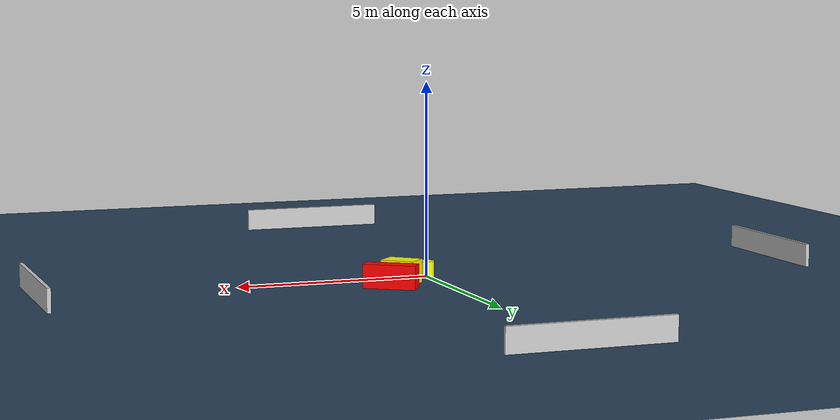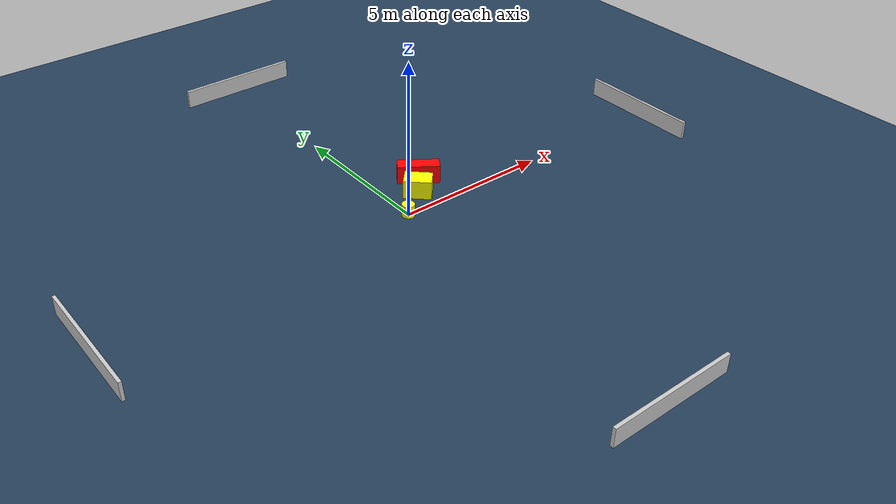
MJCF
<?xml version="1.0" ?>
<mujoco model="generated_environment">
  <option timestep="0.01" integrator="RK4" cone="elliptic"/>
  <default>
    <geom density="1"/>
  </default>
  <asset>
    <texture builtin="gradient" height="3072" name="skybox" rgb1="0.3 0.5 0.7" rgb2="0 0 0" type="skybox" width="512"/>
    <texture builtin="checker" height="300" name="groundplane" rgb1="0.2 0.3 0.4" rgb2="0.1 0.2 0.3" type="2d" width="300"/>
    <material name="groundplane" reflectance="0.2" texrepeat="5 5" texture="groundplane"/>
  </asset>
  <worldbody>
    <light dir="0 0 -1" directional="true" pos="0 0 1.5"/>
    <geom condim="3" friction="0.5 0.005 0.001" material="groundplane" name="floor" pos="0 0 0" size="0 0 0.05" type="plane"/>
    <body name="walls">
      <geom name="wall_1" condim="4" pos="-10.0 0.0 0.3" rgba="0.800000011920929 0.800000011920929 0.800000011920929 1.0" size="0.05 2.0 0.3" type="box"/>
      <geom name="wall_2" condim="4" pos="10.0 0.0 0.3" rgba="0.800000011920929 0.800000011920929 0.800000011920929 1.0" size="0.05 2.0 0.3" type="box"/>
      <geom name="wall_3" condim="4" pos="0.0 -10.0 0.3" rgba="0.800000011920929 0.800000011920929 0.800000011920929 1.0" size="2.0 0.05 0.3" type="box"/>
      <geom name="wall_4" condim="4" pos="0.0 10.0 0.3" rgba="0.800000011920929 0.800000011920929 0.800000011920929 1.0" size="2.0 0.05 0.3" type="box"/>
    </body>
    <body name="robot">
      <joint name="joint_x" type="slide" pos="0 0 0" axis="1 0 0"/>
      <joint name="joint_y" type="slide" pos="0 0 0" axis="0 1 0"/>
      <geom name="robot" type="cylinder" pos="0.0 0.0 0.2" size="0.2 0.2 0.0" mass="5.0" friction="1.0 0.005 0.0001" condim="4" rgba="1.0 1.0 0.0 1.0"/>
    </body>
    <body name="obstacle_1_movable">
      <geom name="obstacle_1_movable" condim="4" pos="0.9483010494469597 0.7410915631271301 0.3" euler="0 0 226.82061634303818" friction="0.0 0.005 0.001" rgba="1.0 1.0 0.0 1.0" size="0.29869781817801466 0.4360002748452525 0.3" type="box" mass="0.1"/>
      <joint type="free"/>
    </body>
    <body name="obstacle_2_static">
      <geom name="obstacle_2_static" condim="4" pos="1.4487266082167383 1.3726476899811193 0.3" euler="0 0 56.00575601872102" friction="0.0 0.005 0.001" rgba="1.0 0.0 0.0 1.0" size="0.220771619676047 0.6659349240595447 0.3" type="box"/>
    </body>
  </worldbody>
  <actuator>
    <motor name="actuator_x" joint="joint_x" gear="1" ctrlrange="-1 1"/>
    <motor name="actuator_y" joint="joint_y" gear="1" ctrlrange="-1 1"/>
  </actuator>
</mujoco>
